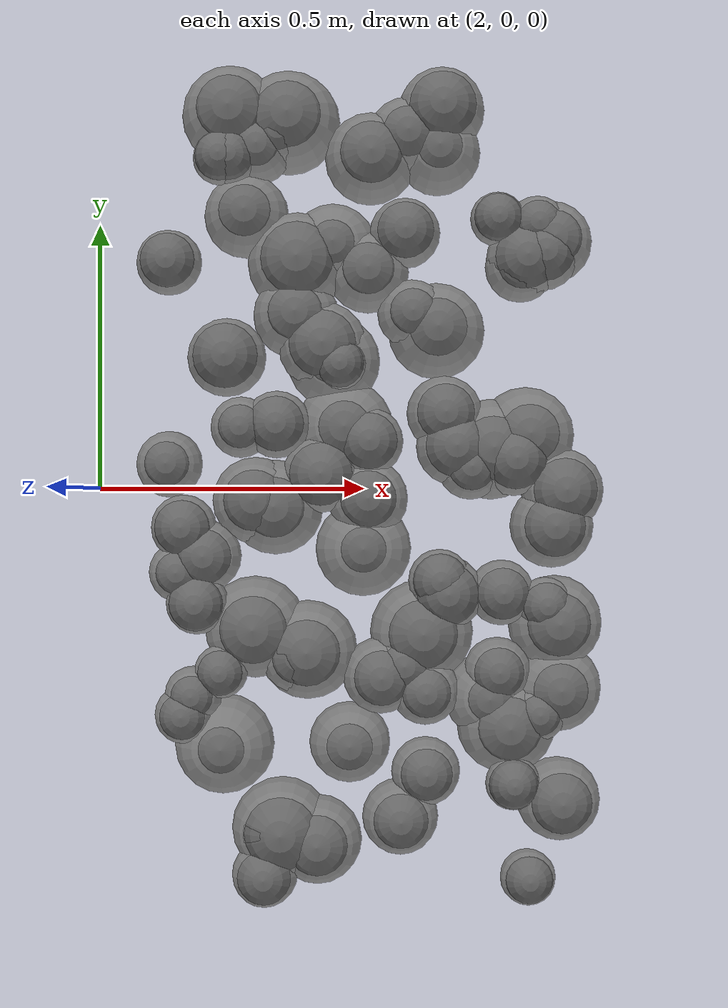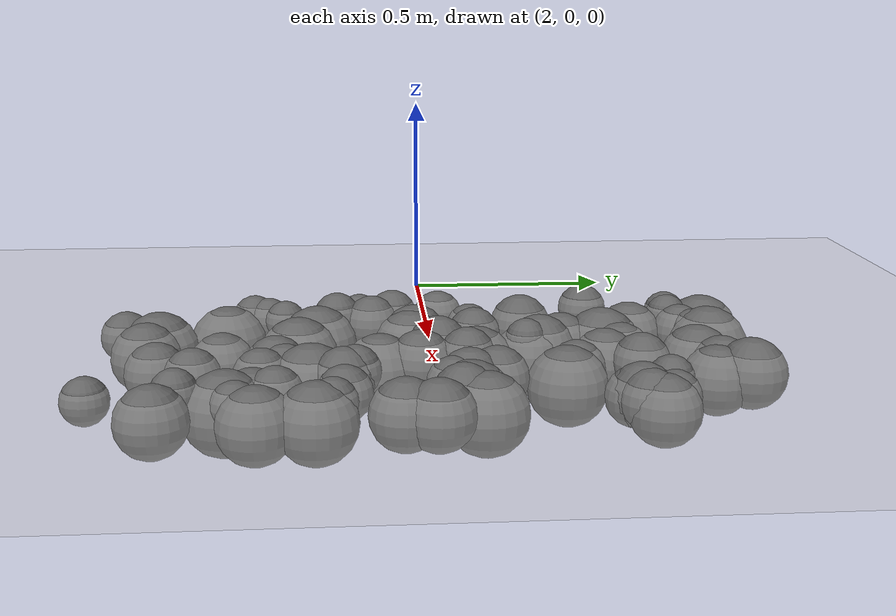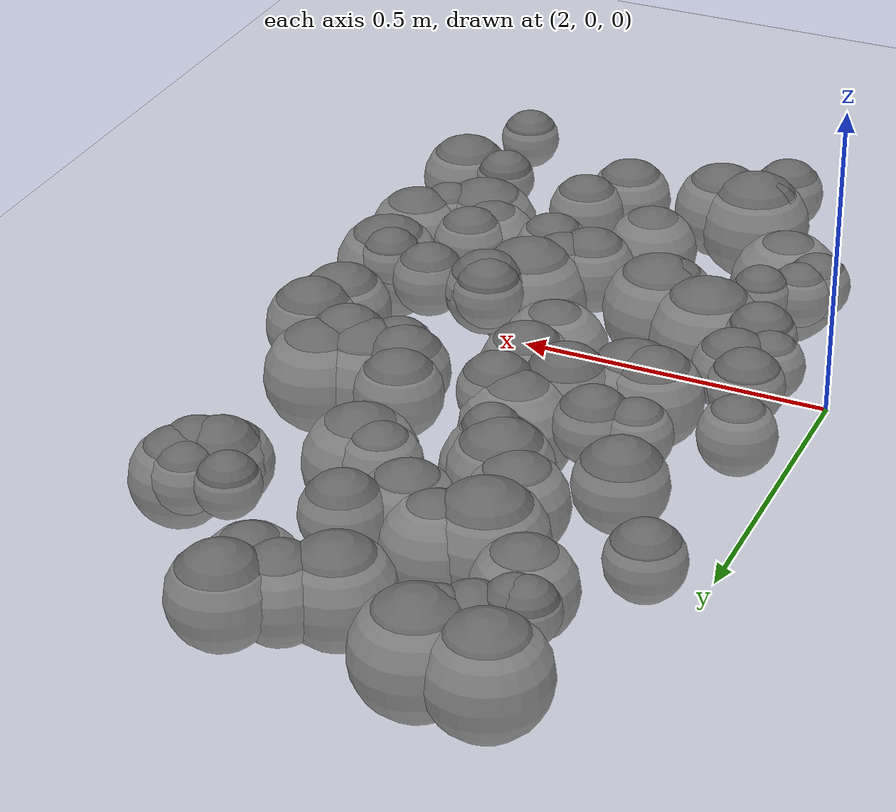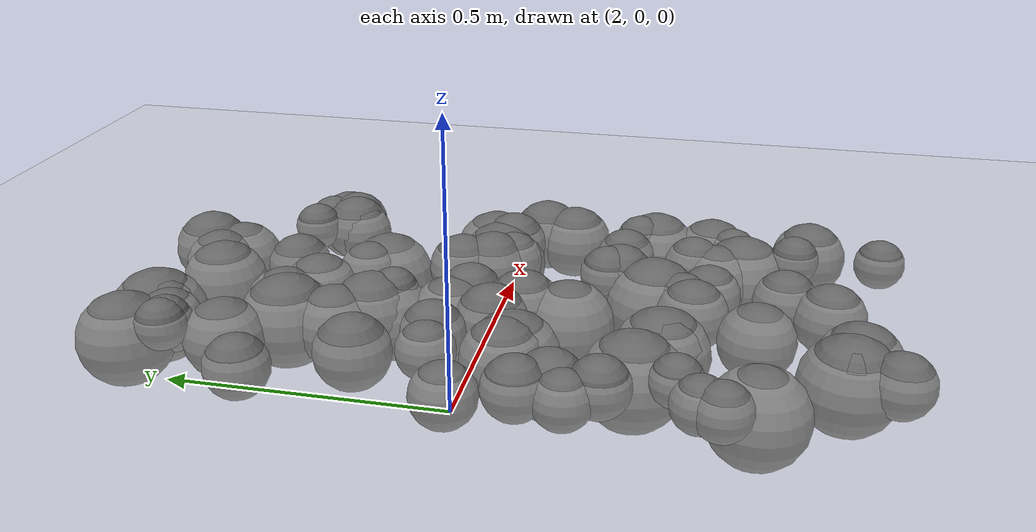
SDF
<sdf version="1.6">
 <world name="high_freq_world">
  <model name="ground_plane">
   <static>true</static>
   <link name="link">
    <collision name="collision">
     <geometry><plane><normal>0 0 1</normal><size>100 100</size></plane></geometry>
     <surface><friction><ode><mu>100.0</mu><mu2>100.0</mu2></ode></friction></surface>
    </collision>
    <visual name="visual">
     <geometry><plane><normal>0 0 1</normal><size>100 100</size></plane></geometry>
     <material><ambient>0.8 0.8 0.8 1</ambient><diffuse>0.8 0.8 0.8 1</diffuse></material>
    </visual>
   </link>
  </model>
  <model name="bump_9">
   <static>true</static>
   <pose>2.586 0.682 -0.064 0 0 0</pose>
   <link name="link">
    <collision name="collision">
     <geometry><sphere><radius>0.079</radius></sphere></geometry>
     <surface><friction><ode><mu>100.0</mu><mu2>100.0</mu2></ode></friction></surface>
    </collision>
    <visual name="visual">
     <geometry><sphere><radius>0.079</radius></sphere></geometry>
     <material><ambient>0.3 0.3 0.3 1</ambient><diffuse>0.4 0.4 0.4 1</diffuse></material>
    </visual>
   </link>
  </model>
  <model name="bump_10">
   <static>true</static>
   <pose>2.442 0.248 -0.077 0 0 0</pose>
   <link name="link">
    <collision name="collision">
     <geometry><sphere><radius>0.090</radius></sphere></geometry>
     <surface><friction><ode><mu>100.0</mu><mu2>100.0</mu2></ode></friction></surface>
    </collision>
    <visual name="visual">
     <geometry><sphere><radius>0.090</radius></sphere></geometry>
     <material><ambient>0.3 0.3 0.3 1</ambient><diffuse>0.4 0.4 0.4 1</diffuse></material>
    </visual>
   </link>
  </model>
  <model name="bump_17">
   <static>true</static>
   <pose>2.576 -0.338 -0.054 0 0 0</pose>
   <link name="link">
    <collision name="collision">
     <geometry><sphere><radius>0.068</radius></sphere></geometry>
     <surface><friction><ode><mu>100.0</mu><mu2>100.0</mu2></ode></friction></surface>
    </collision>
    <visual name="visual">
     <geometry><sphere><radius>0.068</radius></sphere></geometry>
     <material><ambient>0.3 0.3 0.3 1</ambient><diffuse>0.4 0.4 0.4 1</diffuse></material>
    </visual>
   </link>
  </model>
  <model name="bump_18">
   <static>true</static>
   <pose>2.618 -0.543 -0.045 0 0 0</pose>
   <link name="link">
    <collision name="collision">
     <geometry><sphere><radius>0.066</radius></sphere></geometry>
     <surface><friction><ode><mu>100.0</mu><mu2>100.0</mu2></ode></friction></surface>
    </collision>
    <visual name="visual">
     <geometry><sphere><radius>0.066</radius></sphere></geometry>
     <material><ambient>0.3 0.3 0.3 1</ambient><diffuse>0.4 0.4 0.4 1</diffuse></material>
    </visual>
   </link>
  </model>
  <model name="bump_19">
   <static>true</static>
   <pose>2.418 0.028 -0.045 0 0 0</pose>
   <link name="link">
    <collision name="collision">
     <geometry><sphere><radius>0.074</radius></sphere></geometry>
     <surface><friction><ode><mu>100.0</mu><mu2>100.0</mu2></ode></friction></surface>
    </collision>
    <visual name="visual">
     <geometry><sphere><radius>0.074</radius></sphere></geometry>
     <material><ambient>0.3 0.3 0.3 1</ambient><diffuse>0.4 0.4 0.4 1</diffuse></material>
    </visual>
   </link>
  </model>
  <model name="bump_27">
   <static>true</static>
   <pose>2.642 0.308 -0.078 0 0 0</pose>
   <link name="link">
    <collision name="collision">
     <geometry><sphere><radius>0.094</radius></sphere></geometry>
     <surface><friction><ode><mu>100.0</mu><mu2>100.0</mu2></ode></friction></surface>
    </collision>
    <visual name="visual">
     <geometry><sphere><radius>0.094</radius></sphere></geometry>
     <material><ambient>0.3 0.3 0.3 1</ambient><diffuse>0.4 0.4 0.4 1</diffuse></material>
    </visual>
   </link>
  </model>
  <model name="bump_39">
   <static>true</static>
   <pose>2.816 0.104 -0.077 0 0 0</pose>
   <link name="link">
    <collision name="collision">
     <geometry><sphere><radius>0.094</radius></sphere></geometry>
     <surface><friction><ode><mu>100.0</mu><mu2>100.0</mu2></ode></friction></surface>
    </collision>
    <visual name="visual">
     <geometry><sphere><radius>0.094</radius></sphere></geometry>
     <material><ambient>0.3 0.3 0.3 1</ambient><diffuse>0.4 0.4 0.4 1</diffuse></material>
    </visual>
   </link>
  </model>
  <model name="bump_41">
   <static>true</static>
   <pose>2.369 0.337 -0.066 0 0 0</pose>
   <link name="link">
    <collision name="collision">
     <geometry><sphere><radius>0.083</radius></sphere></geometry>
     <surface><friction><ode><mu>100.0</mu><mu2>100.0</mu2></ode></friction></surface>
    </collision>
    <visual name="visual">
     <geometry><sphere><radius>0.083</radius></sphere></geometry>
     <material><ambient>0.3 0.3 0.3 1</ambient><diffuse>0.4 0.4 0.4 1</diffuse></material>
    </visual>
   </link>
  </model>
  <model name="bump_56">
   <static>true</static>
   <pose>2.783 -0.562 -0.023 0 0 0</pose>
   <link name="link">
    <collision name="collision">
     <geometry><sphere><radius>0.052</radius></sphere></geometry>
     <surface><friction><ode><mu>100.0</mu><mu2>100.0</mu2></ode></friction></surface>
    </collision>
    <visual name="visual">
     <geometry><sphere><radius>0.052</radius></sphere></geometry>
     <material><ambient>0.3 0.3 0.3 1</ambient><diffuse>0.4 0.4 0.4 1</diffuse></material>
    </visual>
   </link>
  </model>
  <model name="bump_60">
   <static>true</static>
   <pose>2.126 0.436 -0.037 0 0 0</pose>
   <link name="link">
    <collision name="collision">
     <geometry><sphere><radius>0.063</radius></sphere></geometry>
     <surface><friction><ode><mu>100.0</mu><mu2>100.0</mu2></ode></friction></surface>
    </collision>
    <visual name="visual">
     <geometry><sphere><radius>0.063</radius></sphere></geometry>
     <material><ambient>0.3 0.3 0.3 1</ambient><diffuse>0.4 0.4 0.4 1</diffuse></material>
    </visual>
   </link>
  </model>
  <model name="bump_63">
   <static>true</static>
   <pose>2.336 0.683 -0.046 0 0 0</pose>
   <link name="link">
    <collision name="collision">
     <geometry><sphere><radius>0.058</radius></sphere></geometry>
     <surface><friction><ode><mu>100.0</mu><mu2>100.0</mu2></ode></friction></surface>
    </collision>
    <visual name="visual">
     <geometry><sphere><radius>0.058</radius></sphere></geometry>
     <material><ambient>0.3 0.3 0.3 1</ambient><diffuse>0.4 0.4 0.4 1</diffuse></material>
    </visual>
   </link>
  </model>
  <model name="bump_65">
   <static>true</static>
   <pose>2.834 0.507 -0.039 0 0 0</pose>
   <link name="link">
    <collision name="collision">
     <geometry><sphere><radius>0.057</radius></sphere></geometry>
     <surface><friction><ode><mu>100.0</mu><mu2>100.0</mu2></ode></friction></surface>
    </collision>
    <visual name="visual">
     <geometry><sphere><radius>0.057</radius></sphere></geometry>
     <material><ambient>0.3 0.3 0.3 1</ambient><diffuse>0.4 0.4 0.4 1</diffuse></material>
    </visual>
   </link>
  </model>
  <model name="bump_67">
   <static>true</static>
   <pose>2.195 -0.129 -0.046 0 0 0</pose>
   <link name="link">
    <collision name="collision">
     <geometry><sphere><radius>0.069</radius></sphere></geometry>
     <surface><friction><ode><mu>100.0</mu><mu2>100.0</mu2></ode></friction></surface>
    </collision>
    <visual name="visual">
     <geometry><sphere><radius>0.069</radius></sphere></geometry>
     <material><ambient>0.3 0.3 0.3 1</ambient><diffuse>0.4 0.4 0.4 1</diffuse></material>
    </visual>
   </link>
  </model>
  <model name="bump_69">
   <static>true</static>
   <pose>2.515 0.642 -0.067 0 0 0</pose>
   <link name="link">
    <collision name="collision">
     <geometry><sphere><radius>0.089</radius></sphere></geometry>
     <surface><friction><ode><mu>100.0</mu><mu2>100.0</mu2></ode></friction></surface>
    </collision>
    <visual name="visual">
     <geometry><sphere><radius>0.089</radius></sphere></geometry>
     <material><ambient>0.3 0.3 0.3 1</ambient><diffuse>0.4 0.4 0.4 1</diffuse></material>
    </visual>
   </link>
  </model>
  <model name="bump_72">
   <static>true</static>
   <pose>2.863 -0.072 -0.057 0 0 0</pose>
   <link name="link">
    <collision name="collision">
     <geometry><sphere><radius>0.081</radius></sphere></geometry>
     <surface><friction><ode><mu>100.0</mu><mu2>100.0</mu2></ode></friction></surface>
    </collision>
    <visual name="visual">
     <geometry><sphere><radius>0.081</radius></sphere></geometry>
     <material><ambient>0.3 0.3 0.3 1</ambient><diffuse>0.4 0.4 0.4 1</diffuse></material>
    </visual>
   </link>
  </model>
  <model name="bump_74">
   <static>true</static>
   <pose>2.508 -0.019 -0.056 0 0 0</pose>
   <link name="link">
    <collision name="collision">
     <geometry><sphere><radius>0.077</radius></sphere></geometry>
     <surface><friction><ode><mu>100.0</mu><mu2>100.0</mu2></ode></friction></surface>
    </collision>
    <visual name="visual">
     <geometry><sphere><radius>0.077</radius></sphere></geometry>
     <material><ambient>0.3 0.3 0.3 1</ambient><diffuse>0.4 0.4 0.4 1</diffuse></material>
    </visual>
   </link>
  </model>
  <model name="bump_77">
   <static>true</static>
   <pose>2.645 -0.176 -0.030 0 0 0</pose>
   <link name="link">
    <collision name="collision">
     <geometry><sphere><radius>0.060</radius></sphere></geometry>
     <surface><friction><ode><mu>100.0</mu><mu2>100.0</mu2></ode></friction></surface>
    </collision>
    <visual name="visual">
     <geometry><sphere><radius>0.060</radius></sphere></geometry>
     <material><ambient>0.3 0.3 0.3 1</ambient><diffuse>0.4 0.4 0.4 1</diffuse></material>
    </visual>
   </link>
  </model>
  <model name="bump_78">
   <static>true</static>
   <pose>2.499 -0.116 -0.083 0 0 0</pose>
   <link name="link">
    <collision name="collision">
     <geometry><sphere><radius>0.093</radius></sphere></geometry>
     <surface><friction><ode><mu>100.0</mu><mu2>100.0</mu2></ode></friction></surface>
    </collision>
    <visual name="visual">
     <geometry><sphere><radius>0.093</radius></sphere></geometry>
     <material><ambient>0.3 0.3 0.3 1</ambient><diffuse>0.4 0.4 0.4 1</diffuse></material>
    </visual>
   </link>
  </model>
  <model name="bump_80">
   <static>true</static>
   <pose>2.289 -0.268 -0.076 0 0 0</pose>
   <link name="link">
    <collision name="collision">
     <geometry><sphere><radius>0.099</radius></sphere></geometry>
     <surface><friction><ode><mu>100.0</mu><mu2>100.0</mu2></ode></friction></surface>
    </collision>
    <visual name="visual">
     <geometry><sphere><radius>0.099</radius></sphere></geometry>
     <material><ambient>0.3 0.3 0.3 1</ambient><diffuse>0.4 0.4 0.4 1</diffuse></material>
    </visual>
   </link>
  </model>
  <model name="bump_101">
   <static>true</static>
   <pose>2.833 -0.431 -0.040 0 0 0</pose>
   <link name="link">
    <collision name="collision">
     <geometry><sphere><radius>0.055</radius></sphere></geometry>
     <surface><friction><ode><mu>100.0</mu><mu2>100.0</mu2></ode></friction></surface>
    </collision>
    <visual name="visual">
     <geometry><sphere><radius>0.055</radius></sphere></geometry>
     <material><ambient>0.3 0.3 0.3 1</ambient><diffuse>0.4 0.4 0.4 1</diffuse></material>
    </visual>
   </link>
  </model>
  <model name="bump_104">
   <static>true</static>
   <pose>2.705 0.042 -0.045 0 0 0</pose>
   <link name="link">
    <collision name="collision">
     <geometry><sphere><radius>0.063</radius></sphere></geometry>
     <surface><friction><ode><mu>100.0</mu><mu2>100.0</mu2></ode></friction></surface>
    </collision>
    <visual name="visual">
     <geometry><sphere><radius>0.063</radius></sphere></geometry>
     <material><ambient>0.3 0.3 0.3 1</ambient><diffuse>0.4 0.4 0.4 1</diffuse></material>
    </visual>
   </link>
  </model>
  <model name="bump_107">
   <static>true</static>
   <pose>2.228 -0.496 -0.087 0 0 0</pose>
   <link name="link">
    <collision name="collision">
     <geometry><sphere><radius>0.097</radius></sphere></geometry>
     <surface><friction><ode><mu>100.0</mu><mu2>100.0</mu2></ode></friction></surface>
    </collision>
    <visual name="visual">
     <geometry><sphere><radius>0.097</radius></sphere></geometry>
     <material><ambient>0.3 0.3 0.3 1</ambient><diffuse>0.4 0.4 0.4 1</diffuse></material>
    </visual>
   </link>
  </model>
  <model name="bump_132">
   <static>true</static>
   <pose>2.144 -0.160 -0.043 0 0 0</pose>
   <link name="link">
    <collision name="collision">
     <geometry><sphere><radius>0.058</radius></sphere></geometry>
     <surface><friction><ode><mu>100.0</mu><mu2>100.0</mu2></ode></friction></surface>
    </collision>
    <visual name="visual">
     <geometry><sphere><radius>0.058</radius></sphere></geometry>
     <material><ambient>0.3 0.3 0.3 1</ambient><diffuse>0.4 0.4 0.4 1</diffuse></material>
    </visual>
   </link>
  </model>
  <model name="bump_138">
   <static>true</static>
   <pose>2.454 0.239 -0.022 0 0 0</pose>
   <link name="link">
    <collision name="collision">
     <geometry><sphere><radius>0.051</radius></sphere></geometry>
     <surface><friction><ode><mu>100.0</mu><mu2>100.0</mu2></ode></friction></surface>
    </collision>
    <visual name="visual">
     <geometry><sphere><radius>0.051</radius></sphere></geometry>
     <material><ambient>0.3 0.3 0.3 1</ambient><diffuse>0.4 0.4 0.4 1</diffuse></material>
    </visual>
   </link>
  </model>
  <model name="bump_141">
   <static>true</static>
   <pose>2.803 0.428 -0.050 0 0 0</pose>
   <link name="link">
    <collision name="collision">
     <geometry><sphere><radius>0.068</radius></sphere></geometry>
     <surface><friction><ode><mu>100.0</mu><mu2>100.0</mu2></ode></friction></surface>
    </collision>
    <visual name="visual">
     <geometry><sphere><radius>0.068</radius></sphere></geometry>
     <material><ambient>0.3 0.3 0.3 1</ambient><diffuse>0.4 0.4 0.4 1</diffuse></material>
    </visual>
   </link>
  </model>
  <model name="bump_161">
   <static>true</static>
   <pose>2.618 -0.389 -0.048 0 0 0</pose>
   <link name="link">
    <collision name="collision">
     <geometry><sphere><radius>0.066</radius></sphere></geometry>
     <surface><friction><ode><mu>100.0</mu><mu2>100.0</mu2></ode></friction></surface>
    </collision>
    <visual name="visual">
     <geometry><sphere><radius>0.066</radius></sphere></geometry>
     <material><ambient>0.3 0.3 0.3 1</ambient><diffuse>0.4 0.4 0.4 1</diffuse></material>
    </visual>
   </link>
  </model>
  <model name="bump_165">
   <static>true</static>
   <pose>2.652 0.733 -0.054 0 0 0</pose>
   <link name="link">
    <collision name="collision">
     <geometry><sphere><radius>0.083</radius></sphere></geometry>
     <surface><friction><ode><mu>100.0</mu><mu2>100.0</mu2></ode></friction></surface>
    </collision>
    <visual name="visual">
     <geometry><sphere><radius>0.083</radius></sphere></geometry>
     <material><ambient>0.3 0.3 0.3 1</ambient><diffuse>0.4 0.4 0.4 1</diffuse></material>
    </visual>
   </link>
  </model>
  <model name="bump_167">
   <static>true</static>
   <pose>2.441 0.471 -0.075 0 0 0</pose>
   <link name="link">
    <collision name="collision">
     <geometry><sphere><radius>0.085</radius></sphere></geometry>
     <surface><friction><ode><mu>100.0</mu><mu2>100.0</mu2></ode></friction></surface>
    </collision>
    <visual name="visual">
     <geometry><sphere><radius>0.085</radius></sphere></geometry>
     <material><ambient>0.3 0.3 0.3 1</ambient><diffuse>0.4 0.4 0.4 1</diffuse></material>
    </visual>
   </link>
  </model>
  <model name="bump_171">
   <static>true</static>
   <pose>2.391 -0.312 -0.073 0 0 0</pose>
   <link name="link">
    <collision name="collision">
     <geometry><sphere><radius>0.096</radius></sphere></geometry>
     <surface><friction><ode><mu>100.0</mu><mu2>100.0</mu2></ode></friction></surface>
    </collision>
    <visual name="visual">
     <geometry><sphere><radius>0.096</radius></sphere></geometry>
     <material><ambient>0.3 0.3 0.3 1</ambient><diffuse>0.4 0.4 0.4 1</diffuse></material>
    </visual>
   </link>
  </model>
  <model name="bump_177">
   <static>true</static>
   <pose>2.764 -0.200 -0.041 0 0 0</pose>
   <link name="link">
    <collision name="collision">
     <geometry><sphere><radius>0.063</radius></sphere></geometry>
     <surface><friction><ode><mu>100.0</mu><mu2>100.0</mu2></ode></friction></surface>
    </collision>
    <visual name="visual">
     <geometry><sphere><radius>0.063</radius></sphere></geometry>
     <material><ambient>0.3 0.3 0.3 1</ambient><diffuse>0.4 0.4 0.4 1</diffuse></material>
    </visual>
   </link>
  </model>
  <model name="bump_181">
   <static>true</static>
   <pose>2.873 -0.385 -0.070 0 0 0</pose>
   <link name="link">
    <collision name="collision">
     <geometry><sphere><radius>0.086</radius></sphere></geometry>
     <surface><friction><ode><mu>100.0</mu><mu2>100.0</mu2></ode></friction></surface>
    </collision>
    <visual name="visual">
     <geometry><sphere><radius>0.086</radius></sphere></geometry>
     <material><ambient>0.3 0.3 0.3 1</ambient><diffuse>0.4 0.4 0.4 1</diffuse></material>
    </visual>
   </link>
  </model>
  <model name="bump_195">
   <static>true</static>
   <pose>2.883 -0.003 -0.053 0 0 0</pose>
   <link name="link">
    <collision name="collision">
     <geometry><sphere><radius>0.080</radius></sphere></geometry>
     <surface><friction><ode><mu>100.0</mu><mu2>100.0</mu2></ode></friction></surface>
    </collision>
    <visual name="visual">
     <geometry><sphere><radius>0.080</radius></sphere></geometry>
     <material><ambient>0.3 0.3 0.3 1</ambient><diffuse>0.4 0.4 0.4 1</diffuse></material>
    </visual>
   </link>
  </model>
  <model name="bump_203">
   <static>true</static>
   <pose>2.225 0.635 -0.023 0 0 0</pose>
   <link name="link">
    <collision name="collision">
     <geometry><sphere><radius>0.052</radius></sphere></geometry>
     <surface><friction><ode><mu>100.0</mu><mu2>100.0</mu2></ode></friction></surface>
    </collision>
    <visual name="visual">
     <geometry><sphere><radius>0.052</radius></sphere></geometry>
     <material><ambient>0.3 0.3 0.3 1</ambient><diffuse>0.4 0.4 0.4 1</diffuse></material>
    </visual>
   </link>
  </model>
  <model name="bump_207">
   <static>true</static>
   <pose>2.463 0.118 -0.082 0 0 0</pose>
   <link name="link">
    <collision name="collision">
     <geometry><sphere><radius>0.095</radius></sphere></geometry>
     <surface><friction><ode><mu>100.0</mu><mu2>100.0</mu2></ode></friction></surface>
    </collision>
    <visual name="visual">
     <geometry><sphere><radius>0.095</radius></sphere></geometry>
     <material><ambient>0.3 0.3 0.3 1</ambient><diffuse>0.4 0.4 0.4 1</diffuse></material>
    </visual>
   </link>
  </model>
  <model name="bump_216">
   <static>true</static>
   <pose>2.657 -0.198 -0.043 0 0 0</pose>
   <link name="link">
    <collision name="collision">
     <geometry><sphere><radius>0.070</radius></sphere></geometry>
     <surface><friction><ode><mu>100.0</mu><mu2>100.0</mu2></ode></friction></surface>
    </collision>
    <visual name="visual">
     <geometry><sphere><radius>0.070</radius></sphere></geometry>
     <material><ambient>0.3 0.3 0.3 1</ambient><diffuse>0.4 0.4 0.4 1</diffuse></material>
    </visual>
   </link>
  </model>
  <model name="bump_217">
   <static>true</static>
   <pose>2.580 0.493 -0.043 0 0 0</pose>
   <link name="link">
    <collision name="collision">
     <geometry><sphere><radius>0.068</radius></sphere></geometry>
     <surface><friction><ode><mu>100.0</mu><mu2>100.0</mu2></ode></friction></surface>
    </collision>
    <visual name="visual">
     <geometry><sphere><radius>0.068</radius></sphere></geometry>
     <material><ambient>0.3 0.3 0.3 1</ambient><diffuse>0.4 0.4 0.4 1</diffuse></material>
    </visual>
   </link>
  </model>
  <model name="bump_221">
   <static>true</static>
   <pose>2.333 0.124 -0.040 0 0 0</pose>
   <link name="link">
    <collision name="collision">
     <geometry><sphere><radius>0.065</radius></sphere></geometry>
     <surface><friction><ode><mu>100.0</mu><mu2>100.0</mu2></ode></friction></surface>
    </collision>
    <visual name="visual">
     <geometry><sphere><radius>0.065</radius></sphere></geometry>
     <material><ambient>0.3 0.3 0.3 1</ambient><diffuse>0.4 0.4 0.4 1</diffuse></material>
    </visual>
   </link>
  </model>
  <model name="bump_228">
   <static>true</static>
   <pose>2.355 0.715 -0.078 0 0 0</pose>
   <link name="link">
    <collision name="collision">
     <geometry><sphere><radius>0.100</radius></sphere></geometry>
     <surface><friction><ode><mu>100.0</mu><mu2>100.0</mu2></ode></friction></surface>
    </collision>
    <visual name="visual">
     <geometry><sphere><radius>0.100</radius></sphere></geometry>
     <material><ambient>0.3 0.3 0.3 1</ambient><diffuse>0.4 0.4 0.4 1</diffuse></material>
    </visual>
   </link>
  </model>
  <model name="bump_240">
   <static>true</static>
   <pose>2.533 -0.360 -0.053 0 0 0</pose>
   <link name="link">
    <collision name="collision">
     <geometry><sphere><radius>0.074</radius></sphere></geometry>
     <surface><friction><ode><mu>100.0</mu><mu2>100.0</mu2></ode></friction></surface>
    </collision>
    <visual name="visual">
     <geometry><sphere><radius>0.074</radius></sphere></geometry>
     <material><ambient>0.3 0.3 0.3 1</ambient><diffuse>0.4 0.4 0.4 1</diffuse></material>
    </visual>
   </link>
  </model>
  <model name="bump_242">
   <static>true</static>
   <pose>2.172 -0.395 -0.039 0 0 0</pose>
   <link name="link">
    <collision name="collision">
     <geometry><sphere><radius>0.055</radius></sphere></geometry>
     <surface><friction><ode><mu>100.0</mu><mu2>100.0</mu2></ode></friction></surface>
    </collision>
    <visual name="visual">
     <geometry><sphere><radius>0.055</radius></sphere></geometry>
     <material><ambient>0.3 0.3 0.3 1</ambient><diffuse>0.4 0.4 0.4 1</diffuse></material>
    </visual>
   </link>
  </model>
  <model name="bump_254">
   <static>true</static>
   <pose>2.341 -0.655 -0.068 0 0 0</pose>
   <link name="link">
    <collision name="collision">
     <geometry><sphere><radius>0.097</radius></sphere></geometry>
     <surface><friction><ode><mu>100.0</mu><mu2>100.0</mu2></ode></friction></surface>
    </collision>
    <visual name="visual">
     <geometry><sphere><radius>0.097</radius></sphere></geometry>
     <material><ambient>0.3 0.3 0.3 1</ambient><diffuse>0.4 0.4 0.4 1</diffuse></material>
    </visual>
   </link>
  </model>
  <model name="bump_255">
   <static>true</static>
   <pose>2.329 -0.035 -0.073 0 0 0</pose>
   <link name="link">
    <collision name="collision">
     <geometry><sphere><radius>0.092</radius></sphere></geometry>
     <surface><friction><ode><mu>100.0</mu><mu2>100.0</mu2></ode></friction></surface>
    </collision>
    <visual name="visual">
     <geometry><sphere><radius>0.092</radius></sphere></geometry>
     <material><ambient>0.3 0.3 0.3 1</ambient><diffuse>0.4 0.4 0.4 1</diffuse></material>
    </visual>
   </link>
  </model>
  <model name="bump_259">
   <static>true</static>
   <pose>2.243 0.728 -0.074 0 0 0</pose>
   <link name="link">
    <collision name="collision">
     <geometry><sphere><radius>0.096</radius></sphere></geometry>
     <surface><friction><ode><mu>100.0</mu><mu2>100.0</mu2></ode></friction></surface>
    </collision>
    <visual name="visual">
     <geometry><sphere><radius>0.096</radius></sphere></geometry>
     <material><ambient>0.3 0.3 0.3 1</ambient><diffuse>0.4 0.4 0.4 1</diffuse></material>
    </visual>
   </link>
  </model>
  <model name="bump_263">
   <static>true</static>
   <pose>2.812 -0.743 -0.029 0 0 0</pose>
   <link name="link">
    <collision name="collision">
     <geometry><sphere><radius>0.053</radius></sphere></geometry>
     <surface><friction><ode><mu>100.0</mu><mu2>100.0</mu2></ode></friction></surface>
    </collision>
    <visual name="visual">
     <geometry><sphere><radius>0.053</radius></sphere></geometry>
     <material><ambient>0.3 0.3 0.3 1</ambient><diffuse>0.4 0.4 0.4 1</diffuse></material>
    </visual>
   </link>
  </model>
  <model name="bump_267">
   <static>true</static>
   <pose>2.659 -0.201 -0.041 0 0 0</pose>
   <link name="link">
    <collision name="collision">
     <geometry><sphere><radius>0.071</radius></sphere></geometry>
     <surface><friction><ode><mu>100.0</mu><mu2>100.0</mu2></ode></friction></surface>
    </collision>
    <visual name="visual">
     <geometry><sphere><radius>0.071</radius></sphere></geometry>
     <material><ambient>0.3 0.3 0.3 1</ambient><diffuse>0.4 0.4 0.4 1</diffuse></material>
    </visual>
   </link>
  </model>
  <model name="bump_274">
   <static>true</static>
   <pose>2.569 -0.631 -0.052 0 0 0</pose>
   <link name="link">
    <collision name="collision">
     <geometry><sphere><radius>0.073</radius></sphere></geometry>
     <surface><friction><ode><mu>100.0</mu><mu2>100.0</mu2></ode></friction></surface>
    </collision>
    <visual name="visual">
     <geometry><sphere><radius>0.073</radius></sphere></geometry>
     <material><ambient>0.3 0.3 0.3 1</ambient><diffuse>0.4 0.4 0.4 1</diffuse></material>
    </visual>
   </link>
  </model>
  <model name="bump_279">
   <static>true</static>
   <pose>2.125 0.048 -0.049 0 0 0</pose>
   <link name="link">
    <collision name="collision">
     <geometry><sphere><radius>0.064</radius></sphere></geometry>
     <surface><friction><ode><mu>100.0</mu><mu2>100.0</mu2></ode></friction></surface>
    </collision>
    <visual name="visual">
     <geometry><sphere><radius>0.064</radius></sphere></geometry>
     <material><ambient>0.3 0.3 0.3 1</ambient><diffuse>0.4 0.4 0.4 1</diffuse></material>
    </visual>
   </link>
  </model>
  <model name="bump_283">
   <static>true</static>
   <pose>2.594 0.338 -0.052 0 0 0</pose>
   <link name="link">
    <collision name="collision">
     <geometry><sphere><radius>0.067</radius></sphere></geometry>
     <surface><friction><ode><mu>100.0</mu><mu2>100.0</mu2></ode></friction></surface>
    </collision>
    <visual name="visual">
     <geometry><sphere><radius>0.067</radius></sphere></geometry>
     <material><ambient>0.3 0.3 0.3 1</ambient><diffuse>0.4 0.4 0.4 1</diffuse></material>
    </visual>
   </link>
  </model>
  <model name="bump_287">
   <static>true</static>
   <pose>2.874 -0.598 -0.056 0 0 0</pose>
   <link name="link">
    <collision name="collision">
     <geometry><sphere><radius>0.080</radius></sphere></geometry>
     <surface><friction><ode><mu>100.0</mu><mu2>100.0</mu2></ode></friction></surface>
    </collision>
    <visual name="visual">
     <geometry><sphere><radius>0.080</radius></sphere></geometry>
     <material><ambient>0.3 0.3 0.3 1</ambient><diffuse>0.4 0.4 0.4 1</diffuse></material>
    </visual>
   </link>
  </model>
  <model name="bump_288">
   <static>true</static>
   <pose>2.273 0.531 -0.067 0 0 0</pose>
   <link name="link">
    <collision name="collision">
     <geometry><sphere><radius>0.082</radius></sphere></geometry>
     <surface><friction><ode><mu>100.0</mu><mu2>100.0</mu2></ode></friction></surface>
    </collision>
    <visual name="visual">
     <geometry><sphere><radius>0.082</radius></sphere></geometry>
     <material><ambient>0.3 0.3 0.3 1</ambient><diffuse>0.4 0.4 0.4 1</diffuse></material>
    </visual>
   </link>
  </model>
  <model name="bump_292">
   <static>true</static>
   <pose>2.676 0.081 -0.048 0 0 0</pose>
   <link name="link">
    <collision name="collision">
     <geometry><sphere><radius>0.075</radius></sphere></geometry>
     <surface><friction><ode><mu>100.0</mu><mu2>100.0</mu2></ode></friction></surface>
    </collision>
    <visual name="visual">
     <geometry><sphere><radius>0.075</radius></sphere></geometry>
     <material><ambient>0.3 0.3 0.3 1</ambient><diffuse>0.4 0.4 0.4 1</diffuse></material>
    </visual>
   </link>
  </model>
  <model name="bump_293">
   <static>true</static>
   <pose>2.421 0.277 -0.058 0 0 0</pose>
   <link name="link">
    <collision name="collision">
     <geometry><sphere><radius>0.086</radius></sphere></geometry>
     <surface><friction><ode><mu>100.0</mu><mu2>100.0</mu2></ode></friction></surface>
    </collision>
    <visual name="visual">
     <geometry><sphere><radius>0.086</radius></sphere></geometry>
     <material><ambient>0.3 0.3 0.3 1</ambient><diffuse>0.4 0.4 0.4 1</diffuse></material>
    </visual>
   </link>
  </model>
  <model name="bump_320">
   <static>true</static>
   <pose>2.373 -0.322 -0.056 0 0 0</pose>
   <link name="link">
    <collision name="collision">
     <geometry><sphere><radius>0.073</radius></sphere></geometry>
     <surface><friction><ode><mu>100.0</mu><mu2>100.0</mu2></ode></friction></surface>
    </collision>
    <visual name="visual">
     <geometry><sphere><radius>0.073</radius></sphere></geometry>
     <material><ambient>0.3 0.3 0.3 1</ambient><diffuse>0.4 0.4 0.4 1</diffuse></material>
    </visual>
   </link>
  </model>
  <model name="bump_335">
   <static>true</static>
   <pose>2.738 -0.401 -0.073 0 0 0</pose>
   <link name="link">
    <collision name="collision">
     <geometry><sphere><radius>0.083</radius></sphere></geometry>
     <surface><friction><ode><mu>100.0</mu><mu2>100.0</mu2></ode></friction></surface>
    </collision>
    <visual name="visual">
     <geometry><sphere><radius>0.083</radius></sphere></geometry>
     <material><ambient>0.3 0.3 0.3 1</ambient><diffuse>0.4 0.4 0.4 1</diffuse></material>
    </visual>
   </link>
  </model>
  <model name="bump_347">
   <static>true</static>
   <pose>2.811 0.442 -0.045 0 0 0</pose>
   <link name="link">
    <collision name="collision">
     <geometry><sphere><radius>0.074</radius></sphere></geometry>
     <surface><friction><ode><mu>100.0</mu><mu2>100.0</mu2></ode></friction></surface>
    </collision>
    <visual name="visual">
     <geometry><sphere><radius>0.074</radius></sphere></geometry>
     <material><ambient>0.3 0.3 0.3 1</ambient><diffuse>0.4 0.4 0.4 1</diffuse></material>
    </visual>
   </link>
  </model>
  <model name="bump_357">
   <static>true</static>
   <pose>2.373 0.440 -0.069 0 0 0</pose>
   <link name="link">
    <collision name="collision">
     <geometry><sphere><radius>0.098</radius></sphere></geometry>
     <surface><friction><ode><mu>100.0</mu><mu2>100.0</mu2></ode></friction></surface>
    </collision>
    <visual name="visual">
     <geometry><sphere><radius>0.098</radius></sphere></geometry>
     <material><ambient>0.3 0.3 0.3 1</ambient><diffuse>0.4 0.4 0.4 1</diffuse></material>
    </visual>
   </link>
  </model>
  <model name="bump_358">
   <static>true</static>
   <pose>2.510 0.091 -0.040 0 0 0</pose>
   <link name="link">
    <collision name="collision">
     <geometry><sphere><radius>0.066</radius></sphere></geometry>
     <surface><friction><ode><mu>100.0</mu><mu2>100.0</mu2></ode></friction></surface>
    </collision>
    <visual name="visual">
     <geometry><sphere><radius>0.066</radius></sphere></geometry>
     <material><ambient>0.3 0.3 0.3 1</ambient><diffuse>0.4 0.4 0.4 1</diffuse></material>
    </visual>
   </link>
  </model>
  <model name="bump_366">
   <static>true</static>
   <pose>2.756 -0.350 -0.044 0 0 0</pose>
   <link name="link">
    <collision name="collision">
     <geometry><sphere><radius>0.064</radius></sphere></geometry>
     <surface><friction><ode><mu>100.0</mu><mu2>100.0</mu2></ode></friction></surface>
    </collision>
    <visual name="visual">
     <geometry><sphere><radius>0.064</radius></sphere></geometry>
     <material><ambient>0.3 0.3 0.3 1</ambient><diffuse>0.4 0.4 0.4 1</diffuse></material>
    </visual>
   </link>
  </model>
  <model name="bump_374">
   <static>true</static>
   <pose>2.180 -0.219 -0.031 0 0 0</pose>
   <link name="link">
    <collision name="collision">
     <geometry><sphere><radius>0.060</radius></sphere></geometry>
     <surface><friction><ode><mu>100.0</mu><mu2>100.0</mu2></ode></friction></surface>
    </collision>
    <visual name="visual">
     <geometry><sphere><radius>0.060</radius></sphere></geometry>
     <material><ambient>0.3 0.3 0.3 1</ambient><diffuse>0.4 0.4 0.4 1</diffuse></material>
    </visual>
   </link>
  </model>
  <model name="bump_378">
   <static>true</static>
   <pose>2.757 0.517 -0.025 0 0 0</pose>
   <link name="link">
    <collision name="collision">
     <geometry><sphere><radius>0.052</radius></sphere></geometry>
     <surface><friction><ode><mu>100.0</mu><mu2>100.0</mu2></ode></friction></surface>
    </collision>
    <visual name="visual">
     <geometry><sphere><radius>0.052</radius></sphere></geometry>
     <material><ambient>0.3 0.3 0.3 1</ambient><diffuse>0.4 0.4 0.4 1</diffuse></material>
    </visual>
   </link>
  </model>
  <model name="bump_384">
   <static>true</static>
   <pose>2.154 -0.433 -0.037 0 0 0</pose>
   <link name="link">
    <collision name="collision">
     <geometry><sphere><radius>0.056</radius></sphere></geometry>
     <surface><friction><ode><mu>100.0</mu><mu2>100.0</mu2></ode></friction></surface>
    </collision>
    <visual name="visual">
     <geometry><sphere><radius>0.056</radius></sphere></geometry>
     <material><ambient>0.3 0.3 0.3 1</ambient><diffuse>0.4 0.4 0.4 1</diffuse></material>
    </visual>
   </link>
  </model>
  <model name="bump_395">
   <static>true</static>
   <pose>2.472 -0.490 -0.066 0 0 0</pose>
   <link name="link">
    <collision name="collision">
     <geometry><sphere><radius>0.078</radius></sphere></geometry>
     <surface><friction><ode><mu>100.0</mu><mu2>100.0</mu2></ode></friction></surface>
    </collision>
    <visual name="visual">
     <geometry><sphere><radius>0.078</radius></sphere></geometry>
     <material><ambient>0.3 0.3 0.3 1</ambient><diffuse>0.4 0.4 0.4 1</diffuse></material>
    </visual>
   </link>
  </model>
  <model name="bump_401">
   <static>true</static>
   <pose>2.296 0.657 -0.053 0 0 0</pose>
   <link name="link">
    <collision name="collision">
     <geometry><sphere><radius>0.066</radius></sphere></geometry>
     <surface><friction><ode><mu>100.0</mu><mu2>100.0</mu2></ode></friction></surface>
    </collision>
    <visual name="visual">
     <geometry><sphere><radius>0.066</radius></sphere></geometry>
     <material><ambient>0.3 0.3 0.3 1</ambient><diffuse>0.4 0.4 0.4 1</diffuse></material>
    </visual>
   </link>
  </model>
  <model name="bump_404">
   <static>true</static>
   <pose>2.863 0.478 -0.061 0 0 0</pose>
   <link name="link">
    <collision name="collision">
     <geometry><sphere><radius>0.080</radius></sphere></geometry>
     <surface><friction><ode><mu>100.0</mu><mu2>100.0</mu2></ode></friction></surface>
    </collision>
    <visual name="visual">
     <geometry><sphere><radius>0.080</radius></sphere></geometry>
     <material><ambient>0.3 0.3 0.3 1</ambient><diffuse>0.4 0.4 0.4 1</diffuse></material>
    </visual>
   </link>
  </model>
  <model name="bump_412">
   <static>true</static>
   <pose>2.870 -0.259 -0.069 0 0 0</pose>
   <link name="link">
    <collision name="collision">
     <geometry><sphere><radius>0.091</radius></sphere></geometry>
     <surface><friction><ode><mu>100.0</mu><mu2>100.0</mu2></ode></friction></surface>
    </collision>
    <visual name="visual">
     <geometry><sphere><radius>0.091</radius></sphere></geometry>
     <material><ambient>0.3 0.3 0.3 1</ambient><diffuse>0.4 0.4 0.4 1</diffuse></material>
    </visual>
   </link>
  </model>
  <model name="bump_414">
   <static>true</static>
   <pose>2.846 0.451 -0.043 0 0 0</pose>
   <link name="link">
    <collision name="collision">
     <geometry><sphere><radius>0.069</radius></sphere></geometry>
     <surface><friction><ode><mu>100.0</mu><mu2>100.0</mu2></ode></friction></surface>
    </collision>
    <visual name="visual">
     <geometry><sphere><radius>0.069</radius></sphere></geometry>
     <material><ambient>0.3 0.3 0.3 1</ambient><diffuse>0.4 0.4 0.4 1</diffuse></material>
    </visual>
   </link>
  </model>
  <model name="bump_415">
   <static>true</static>
   <pose>2.646 0.654 -0.071 0 0 0</pose>
   <link name="link">
    <collision name="collision">
     <geometry><sphere><radius>0.082</radius></sphere></geometry>
     <surface><friction><ode><mu>100.0</mu><mu2>100.0</mu2></ode></friction></surface>
    </collision>
    <visual name="visual">
     <geometry><sphere><radius>0.082</radius></sphere></geometry>
     <material><ambient>0.3 0.3 0.3 1</ambient><diffuse>0.4 0.4 0.4 1</diffuse></material>
    </visual>
   </link>
  </model>
  <model name="bump_416">
   <static>true</static>
   <pose>2.154 -0.074 -0.036 0 0 0</pose>
   <link name="link">
    <collision name="collision">
     <geometry><sphere><radius>0.063</radius></sphere></geometry>
     <surface><friction><ode><mu>100.0</mu><mu2>100.0</mu2></ode></friction></surface>
    </collision>
    <visual name="visual">
     <geometry><sphere><radius>0.063</radius></sphere></geometry>
     <material><ambient>0.3 0.3 0.3 1</ambient><diffuse>0.4 0.4 0.4 1</diffuse></material>
    </visual>
   </link>
  </model>
  <model name="bump_419">
   <static>true</static>
   <pose>2.309 -0.739 -0.039 0 0 0</pose>
   <link name="link">
    <collision name="collision">
     <geometry><sphere><radius>0.063</radius></sphere></geometry>
     <surface><friction><ode><mu>100.0</mu><mu2>100.0</mu2></ode></friction></surface>
    </collision>
    <visual name="visual">
     <geometry><sphere><radius>0.063</radius></sphere></geometry>
     <material><ambient>0.3 0.3 0.3 1</ambient><diffuse>0.4 0.4 0.4 1</diffuse></material>
    </visual>
   </link>
  </model>
  <model name="bump_423">
   <static>true</static>
   <pose>2.776 -0.456 -0.076 0 0 0</pose>
   <link name="link">
    <collision name="collision">
     <geometry><sphere><radius>0.096</radius></sphere></geometry>
     <surface><friction><ode><mu>100.0</mu><mu2>100.0</mu2></ode></friction></surface>
    </collision>
    <visual name="visual">
     <geometry><sphere><radius>0.096</radius></sphere></geometry>
     <material><ambient>0.3 0.3 0.3 1</ambient><diffuse>0.4 0.4 0.4 1</diffuse></material>
    </visual>
   </link>
  </model>
  <model name="bump_436">
   <static>true</static>
   <pose>2.226 -0.350 -0.029 0 0 0</pose>
   <link name="link">
    <collision name="collision">
     <geometry><sphere><radius>0.051</radius></sphere></geometry>
     <surface><friction><ode><mu>100.0</mu><mu2>100.0</mu2></ode></friction></surface>
    </collision>
    <visual name="visual">
     <geometry><sphere><radius>0.051</radius></sphere></geometry>
     <material><ambient>0.3 0.3 0.3 1</ambient><diffuse>0.4 0.4 0.4 1</diffuse></material>
    </visual>
   </link>
  </model>
  <model name="bump_439">
   <static>true</static>
   <pose>2.612 -0.277 -0.076 0 0 0</pose>
   <link name="link">
    <collision name="collision">
     <geometry><sphere><radius>0.100</radius></sphere></geometry>
     <surface><friction><ode><mu>100.0</mu><mu2>100.0</mu2></ode></friction></surface>
    </collision>
    <visual name="visual">
     <geometry><sphere><radius>0.100</radius></sphere></geometry>
     <material><ambient>0.3 0.3 0.3 1</ambient><diffuse>0.4 0.4 0.4 1</diffuse></material>
    </visual>
   </link>
  </model>
  <model name="bump_449">
   <static>true</static>
   <pose>2.264 0.119 -0.043 0 0 0</pose>
   <link name="link">
    <collision name="collision">
     <geometry><sphere><radius>0.059</radius></sphere></geometry>
     <surface><friction><ode><mu>100.0</mu><mu2>100.0</mu2></ode></friction></surface>
    </collision>
    <visual name="visual">
     <geometry><sphere><radius>0.059</radius></sphere></geometry>
     <material><ambient>0.3 0.3 0.3 1</ambient><diffuse>0.4 0.4 0.4 1</diffuse></material>
    </visual>
   </link>
  </model>
  <model name="bump_457">
   <static>true</static>
   <pose>2.789 0.057 -0.042 0 0 0</pose>
   <link name="link">
    <collision name="collision">
     <geometry><sphere><radius>0.071</radius></sphere></geometry>
     <surface><friction><ode><mu>100.0</mu><mu2>100.0</mu2></ode></friction></surface>
    </collision>
    <visual name="visual">
     <geometry><sphere><radius>0.071</radius></sphere></geometry>
     <material><ambient>0.3 0.3 0.3 1</ambient><diffuse>0.4 0.4 0.4 1</diffuse></material>
    </visual>
   </link>
  </model>
  <model name="bump_469">
   <static>true</static>
   <pose>2.847 -0.224 -0.031 0 0 0</pose>
   <link name="link">
    <collision name="collision">
     <geometry><sphere><radius>0.054</radius></sphere></geometry>
     <surface><friction><ode><mu>100.0</mu><mu2>100.0</mu2></ode></friction></surface>
    </collision>
    <visual name="visual">
     <geometry><sphere><radius>0.054</radius></sphere></geometry>
     <material><ambient>0.3 0.3 0.3 1</ambient><diffuse>0.4 0.4 0.4 1</diffuse></material>
    </visual>
   </link>
  </model>
  <model name="bump_475">
   <static>true</static>
   <pose>2.291 -0.022 -0.061 0 0 0</pose>
   <link name="link">
    <collision name="collision">
     <geometry><sphere><radius>0.084</radius></sphere></geometry>
     <surface><friction><ode><mu>100.0</mu><mu2>100.0</mu2></ode></friction></surface>
    </collision>
    <visual name="visual">
     <geometry><sphere><radius>0.084</radius></sphere></geometry>
     <material><ambient>0.3 0.3 0.3 1</ambient><diffuse>0.4 0.4 0.4 1</diffuse></material>
    </visual>
   </link>
  </model>
  <model name="bump_477">
   <static>true</static>
   <pose>2.236 0.254 -0.046 0 0 0</pose>
   <link name="link">
    <collision name="collision">
     <geometry><sphere><radius>0.076</radius></sphere></geometry>
     <surface><friction><ode><mu>100.0</mu><mu2>100.0</mu2></ode></friction></surface>
    </collision>
    <visual name="visual">
     <geometry><sphere><radius>0.076</radius></sphere></geometry>
     <material><ambient>0.3 0.3 0.3 1</ambient><diffuse>0.4 0.4 0.4 1</diffuse></material>
    </visual>
   </link>
  </model>
  <model name="bump_479">
   <static>true</static>
   <pose>2.243 0.635 -0.025 0 0 0</pose>
   <link name="link">
    <collision name="collision">
     <geometry><sphere><radius>0.052</radius></sphere></geometry>
     <surface><friction><ode><mu>100.0</mu><mu2>100.0</mu2></ode></friction></surface>
    </collision>
    <visual name="visual">
     <geometry><sphere><radius>0.052</radius></sphere></geometry>
     <material><ambient>0.3 0.3 0.3 1</ambient><diffuse>0.4 0.4 0.4 1</diffuse></material>
    </visual>
   </link>
  </model>
  <model name="bump_480">
   <static>true</static>
   <pose>2.509 0.420 -0.063 0 0 0</pose>
   <link name="link">
    <collision name="collision">
     <geometry><sphere><radius>0.079</radius></sphere></geometry>
     <surface><friction><ode><mu>100.0</mu><mu2>100.0</mu2></ode></friction></surface>
    </collision>
    <visual name="visual">
     <geometry><sphere><radius>0.079</radius></sphere></geometry>
     <material><ambient>0.3 0.3 0.3 1</ambient><diffuse>0.4 0.4 0.4 1</diffuse></material>
    </visual>
   </link>
  </model>
  <model name="bump_481">
   <static>true</static>
   <pose>2.322 -0.655 -0.042 0 0 0</pose>
   <link name="link">
    <collision name="collision">
     <geometry><sphere><radius>0.065</radius></sphere></geometry>
     <surface><friction><ode><mu>100.0</mu><mu2>100.0</mu2></ode></friction></surface>
    </collision>
    <visual name="visual">
     <geometry><sphere><radius>0.065</radius></sphere></geometry>
     <material><ambient>0.3 0.3 0.3 1</ambient><diffuse>0.4 0.4 0.4 1</diffuse></material>
    </visual>
   </link>
  </model>
  <model name="bump_485">
   <static>true</static>
   <pose>2.747 0.077 -0.078 0 0 0</pose>
   <link name="link">
    <collision name="collision">
     <geometry><sphere><radius>0.098</radius></sphere></geometry>
     <surface><friction><ode><mu>100.0</mu><mu2>100.0</mu2></ode></friction></surface>
    </collision>
    <visual name="visual">
     <geometry><sphere><radius>0.098</radius></sphere></geometry>
     <material><ambient>0.3 0.3 0.3 1</ambient><diffuse>0.4 0.4 0.4 1</diffuse></material>
    </visual>
   </link>
  </model>
  <model name="bump_489">
   <static>true</static>
   <pose>2.656 0.145 -0.049 0 0 0</pose>
   <link name="link">
    <collision name="collision">
     <geometry><sphere><radius>0.073</radius></sphere></geometry>
     <surface><friction><ode><mu>100.0</mu><mu2>100.0</mu2></ode></friction></surface>
    </collision>
    <visual name="visual">
     <geometry><sphere><radius>0.073</radius></sphere></geometry>
     <material><ambient>0.3 0.3 0.3 1</ambient><diffuse>0.4 0.4 0.4 1</diffuse></material>
    </visual>
   </link>
  </model>
  <model name="bump_497">
   <static>true</static>
   <pose>2.410 -0.677 -0.063 0 0 0</pose>
   <link name="link">
    <collision name="collision">
     <geometry><sphere><radius>0.085</radius></sphere></geometry>
     <surface><friction><ode><mu>100.0</mu><mu2>100.0</mu2></ode></friction></surface>
    </collision>
    <visual name="visual">
     <geometry><sphere><radius>0.085</radius></sphere></geometry>
     <material><ambient>0.3 0.3 0.3 1</ambient><diffuse>0.4 0.4 0.4 1</diffuse></material>
    </visual>
   </link>
  </model>
 </world>
</sdf>
